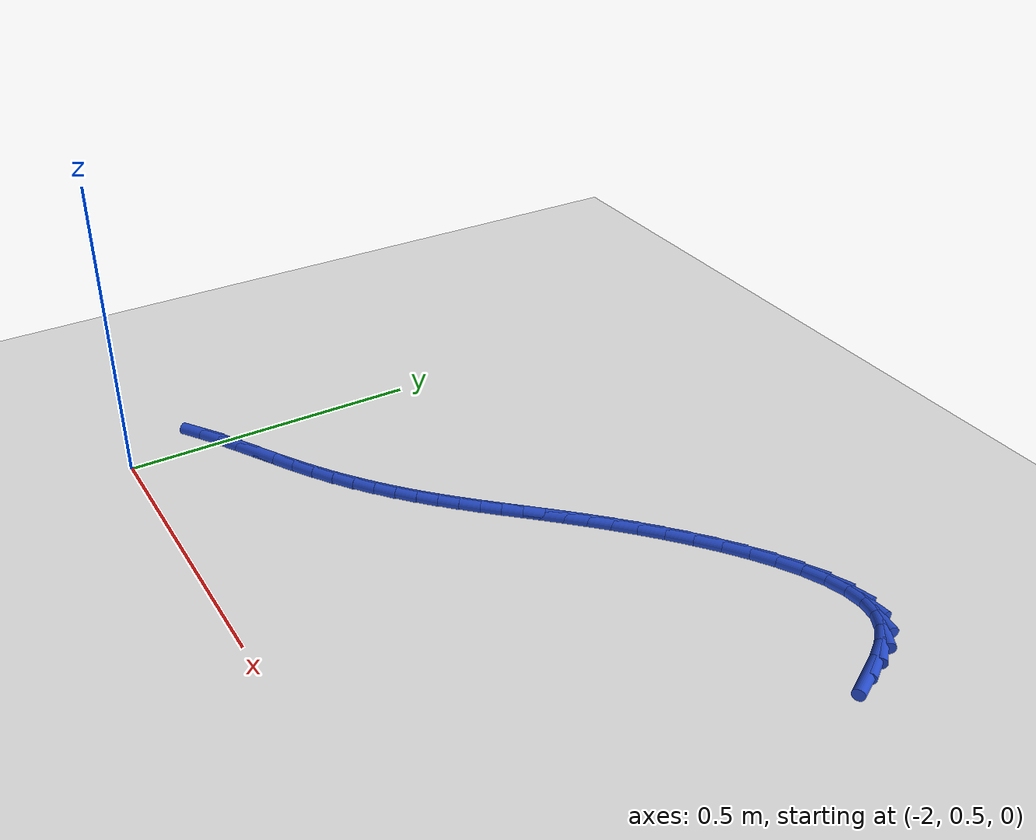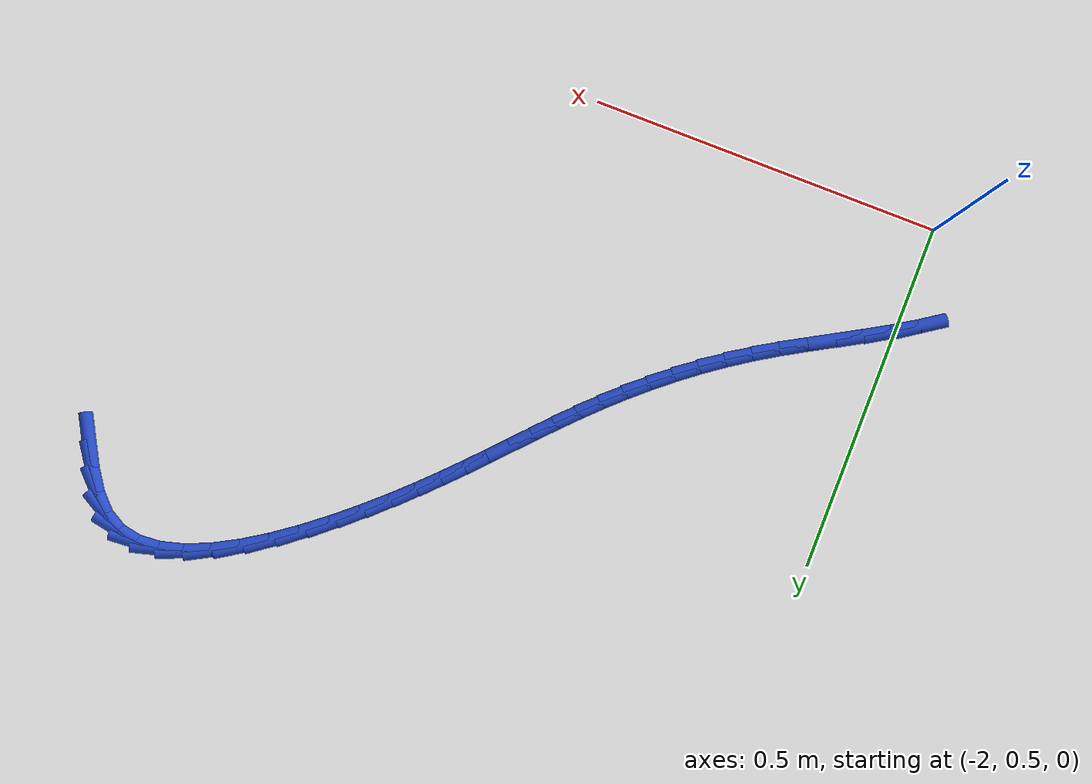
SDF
<sdf version="1.6">
 <world name="default">
  <model name="ground_plane">
   <static>1</static>
   <link name="link">
    <collision name="collision">
     <geometry><plane><normal>0 0 1</normal><size>100 100</size></plane></geometry>
     <surface><friction><ode><mu>100</mu><mu2>50</mu2></ode></friction></surface>
    </collision>
    <visual name="visual">
     <cast_shadows>0</cast_shadows>
     <geometry><plane><normal>0 0 1</normal><size>100 100</size></plane></geometry>
     <material>
      <script><uri>file://media/materials/scripts/gazebo.material</uri><name>Gazebo/WhiteGlow</name></script>
     </material>
    </visual>
   </link>
  </model>
  <model name="line">
   <link name="link_48">
    <pose>-1.013932435736309 1.1952450655422457 0.01 0 1.57 -1.0680367100440324</pose>
    <collision name="collision">
     <geometry><cylinder><radius>0.01</radius><length>0.08</length></cylinder></geometry>
    </collision>
    <visual name="visual">
     <material>
      <script><name>Gazebo/Blue</name><uri>file://media/materials/scripts/gazebo.material</uri></script>
     </material>
     <geometry><cylinder><radius>0.01</radius><length>0.08</length></cylinder></geometry>
    </visual>
   </link>
   <link name="link_49">
    <pose>-1.032186263223125 1.228440414046227 0.01 0 1.57 -0.9770756146621083</pose>
    <collision name="collision">
     <geometry><cylinder><radius>0.01</radius><length>0.08</length></cylinder></geometry>
    </collision>
    <visual name="visual">
     <material>
      <script><name>Gazebo/Blue</name><uri>file://media/materials/scripts/gazebo.material</uri></script>
     </material>
     <geometry><cylinder><radius>0.01</radius><length>0.08</length></cylinder></geometry>
    </visual>
   </link>
   <link name="link_50">
    <pose>-1.0517643571583584 1.2574468087781963 0.01 0 1.57 -0.8025219410421227</pose>
    <collision name="collision">
     <geometry><cylinder><radius>0.01</radius><length>0.08</length></cylinder></geometry>
    </collision>
    <visual name="visual">
     <material>
      <script><name>Gazebo/Blue</name><uri>file://media/materials/scripts/gazebo.material</uri></script>
     </material>
     <geometry><cylinder><radius>0.01</radius><length>0.08</length></cylinder></geometry>
    </visual>
   </link>
   <link name="link_51">
    <pose>-1.0736705333935666 1.2801163645518037 0.01 0 1.57 -0.5157008101195532</pose>
    <collision name="collision">
     <geometry><cylinder><radius>0.01</radius><length>0.08</length></cylinder></geometry>
    </collision>
    <visual name="visual">
     <material>
      <script><name>Gazebo/Blue</name><uri>file://media/materials/scripts/gazebo.material</uri></script>
     </material>
     <geometry><cylinder><radius>0.01</radius><length>0.08</length></cylinder></geometry>
    </visual>
   </link>
   <link name="link_52">
    <pose>-1.0988598838376158 1.2943953819164875 0.01 0 1.57 -0.18938155266959492</pose>
    <collision name="collision">
     <geometry><cylinder><radius>0.01</radius><length>0.08</length></cylinder></geometry>
    </collision>
    <visual name="visual">
     <material>
      <script><name>Gazebo/Blue</name><uri>file://media/materials/scripts/gazebo.material</uri></script>
     </material>
     <geometry><cylinder><radius>0.01</radius><length>0.08</length></cylinder></geometry>
    </visual>
   </link>
   <link name="link_53">
    <pose>-1.1274375725391494 1.29987311304801 0.01 0 1.57 0.07445049427166867</pose>
    <collision name="collision">
     <geometry><cylinder><radius>0.01</radius><length>0.08</length></cylinder></geometry>
    </collision>
    <visual name="visual">
     <material>
      <script><name>Gazebo/Blue</name><uri>file://media/materials/scripts/gazebo.material</uri></script>
     </material>
     <geometry><cylinder><radius>0.01</radius><length>0.08</length></cylinder></geometry>
    </visual>
   </link>
   <link name="link_54">
    <pose>-1.1587865712377918 1.297534842755186 0.01 0 1.57 0.26607413426901294</pose>
    <collision name="collision">
     <geometry><cylinder><radius>0.01</radius><length>0.08</length></cylinder></geometry>
    </collision>
    <visual name="visual">
     <material>
      <script><name>Gazebo/Blue</name><uri>file://media/materials/scripts/gazebo.material</uri></script>
     </material>
     <geometry><cylinder><radius>0.01</radius><length>0.08</length></cylinder></geometry>
    </visual>
   </link>
   <link name="link_55">
    <pose>-1.1922668874397386 1.288410246819792 0.01 0 1.57 0.4023137461545978</pose>
    <collision name="collision">
     <geometry><cylinder><radius>0.01</radius><length>0.08</length></cylinder></geometry>
    </collision>
    <visual name="visual">
     <material>
      <script><name>Gazebo/Blue</name><uri>file://media/materials/scripts/gazebo.material</uri></script>
     </material>
     <geometry><cylinder><radius>0.01</radius><length>0.08</length></cylinder></geometry>
    </visual>
   </link>
   <link name="link_56">
    <pose>-1.2272385286511858 1.2735290010236044 0.01 0 1.57 0.5008174520608945</pose>
    <collision name="collision">
     <geometry><cylinder><radius>0.01</radius><length>0.08</length></cylinder></geometry>
    </collision>
    <visual name="visual">
     <material>
      <script><name>Gazebo/Blue</name><uri>file://media/materials/scripts/gazebo.material</uri></script>
     </material>
     <geometry><cylinder><radius>0.01</radius><length>0.08</length></cylinder></geometry>
    </visual>
   </link>
   <link name="link_57">
    <pose>-1.2630615023783271 1.2539207811483994 0.01 0 1.57 0.5740934905510577</pose>
    <collision name="collision">
     <geometry><cylinder><radius>0.01</radius><length>0.08</length></cylinder></geometry>
    </collision>
    <visual name="visual">
     <material>
      <script><name>Gazebo/Blue</name><uri>file://media/materials/scripts/gazebo.material</uri></script>
     </material>
     <geometry><cylinder><radius>0.01</radius><length>0.08</length></cylinder></geometry>
    </visual>
   </link>
   <link name="link_58">
    <pose>-1.2990958161273587 1.2306152629759537 0.01 0 1.57 0.6302297011941482</pose>
    <collision name="collision">
     <geometry><cylinder><radius>0.01</radius><length>0.08</length></cylinder></geometry>
    </collision>
    <visual name="visual">
     <material>
      <script><name>Gazebo/Blue</name><uri>file://media/materials/scripts/gazebo.material</uri></script>
     </material>
     <geometry><cylinder><radius>0.01</radius><length>0.08</length></cylinder></geometry>
    </visual>
   </link>
   <link name="link_59">
    <pose>-1.3347014774044754 1.2046421222880435 0.01 0 1.57 0.6744137839557371</pose>
    <collision name="collision">
     <geometry><cylinder><radius>0.01</radius><length>0.08</length></cylinder></geometry>
    </collision>
    <visual name="visual">
     <material>
      <script><name>Gazebo/Blue</name><uri>file://media/materials/scripts/gazebo.material</uri></script>
     </material>
     <geometry><cylinder><radius>0.01</radius><length>0.08</length></cylinder></geometry>
    </visual>
   </link>
   <link name="link_60">
    <pose>-1.3692384937158733 1.1770310348664448 0.01 0 1.57 0.7100424940325585</pose>
    <collision name="collision">
     <geometry><cylinder><radius>0.01</radius><length>0.08</length></cylinder></geometry>
    </collision>
    <visual name="visual">
     <material>
      <script><name>Gazebo/Blue</name><uri>file://media/materials/scripts/gazebo.material</uri></script>
     </material>
     <geometry><cylinder><radius>0.01</radius><length>0.08</length></cylinder></geometry>
    </visual>
   </link>
   <link name="link_61">
    <pose>-1.4020668725677454 1.1488116764929341 0.01 0 1.57 0.7397726572771555</pose>
    <collision name="collision">
     <geometry><cylinder><radius>0.01</radius><length>0.08</length></cylinder></geometry>
    </collision>
    <visual name="visual">
     <material>
      <script><name>Gazebo/Blue</name><uri>file://media/materials/scripts/gazebo.material</uri></script>
     </material>
     <geometry><cylinder><radius>0.01</radius><length>0.08</length></cylinder></geometry>
    </visual>
   </link>
   <link name="link_62">
    <pose>-1.4326790900577868 1.1208727402609795 0.01 0 1.57 0.7661713701273847</pose>
    <collision name="collision">
     <geometry><cylinder><radius>0.01</radius><length>0.08</length></cylinder></geometry>
    </collision>
    <visual name="visual">
     <material>
      <script><name>Gazebo/Blue</name><uri>file://media/materials/scripts/gazebo.material</uri></script>
     </material>
     <geometry><cylinder><radius>0.01</radius><length>0.08</length></cylinder></geometry>
    </visual>
   </link>
   <link name="link_63">
    <pose>-1.4612185690662745 1.0934101344588634 0.01 0 1.57 0.7889852936206178</pose>
    <collision name="collision">
     <geometry><cylinder><radius>0.01</radius><length>0.08</length></cylinder></geometry>
    </collision>
    <visual name="visual">
     <material>
      <script><name>Gazebo/Blue</name><uri>file://media/materials/scripts/gazebo.material</uri></script>
     </material>
     <geometry><cylinder><radius>0.01</radius><length>0.08</length></cylinder></geometry>
    </visual>
   </link>
   <link name="link_64">
    <pose>-1.4880283501293594 1.0664073197792483 0.01 0 1.57 0.8072565799552895</pose>
    <collision name="collision">
     <geometry><cylinder><radius>0.01</radius><length>0.08</length></cylinder></geometry>
    </collision>
    <visual name="visual">
     <material>
      <script><name>Gazebo/Blue</name><uri>file://media/materials/scripts/gazebo.material</uri></script>
     </material>
     <geometry><cylinder><radius>0.01</radius><length>0.08</length></cylinder></geometry>
    </visual>
   </link>
   <link name="link_65">
    <pose>-1.5134515262422163 1.039847701084096 0.01 0 1.57 0.8200953908142818</pose>
    <collision name="collision">
     <geometry><cylinder><radius>0.01</radius><length>0.08</length></cylinder></geometry>
    </collision>
    <visual name="visual">
     <material>
      <script><name>Gazebo/Blue</name><uri>file://media/materials/scripts/gazebo.material</uri></script>
     </material>
     <geometry><cylinder><radius>0.01</radius><length>0.08</length></cylinder></geometry>
    </visual>
   </link>
   <link name="link_66">
    <pose>-1.5378311904000213 1.0137146832353696 0.01 0 1.57 0.8267444965421188</pose>
    <collision name="collision">
     <geometry><cylinder><radius>0.01</radius><length>0.08</length></cylinder></geometry>
    </collision>
    <visual name="visual">
     <material>
      <script><name>Gazebo/Blue</name><uri>file://media/materials/scripts/gazebo.material</uri></script>
     </material>
     <geometry><cylinder><radius>0.01</radius><length>0.08</length></cylinder></geometry>
    </visual>
   </link>
   <link name="link_67">
    <pose>-1.5615104355979477 0.9879916710950323 0.01 0 1.57 0.8266413520631027</pose>
    <collision name="collision">
     <geometry><cylinder><radius>0.01</radius><length>0.08</length></cylinder></geometry>
    </collision>
    <visual name="visual">
     <material>
      <script><name>Gazebo/Blue</name><uri>file://media/materials/scripts/gazebo.material</uri></script>
     </material>
     <geometry><cylinder><radius>0.01</radius><length>0.08</length></cylinder></geometry>
    </visual>
   </link>
   <link name="link_68">
    <pose>-1.5848323548311714 0.9626620695250462 0.01 0 1.57 0.8194729049188039</pose>
    <collision name="collision">
     <geometry><cylinder><radius>0.01</radius><length>0.08</length></cylinder></geometry>
    </collision>
    <visual name="visual">
     <material>
      <script><name>Gazebo/Blue</name><uri>file://media/materials/scripts/gazebo.material</uri></script>
     </material>
     <geometry><cylinder><radius>0.01</radius><length>0.08</length></cylinder></geometry>
    </visual>
   </link>
   <link name="link_69">
    <pose>-1.6081400410948663 0.9377092833873734 0.01 0 1.57 0.8052180258226997</pose>
    <collision name="collision">
     <geometry><cylinder><radius>0.01</radius><length>0.08</length></cylinder></geometry>
    </collision>
    <visual name="visual">
     <material>
      <script><name>Gazebo/Blue</name><uri>file://media/materials/scripts/gazebo.material</uri></script>
     </material>
     <geometry><cylinder><radius>0.01</radius><length>0.08</length></cylinder></geometry>
    </visual>
   </link>
   <link name="link_70">
    <pose>-1.631776587384207 0.9131167175439773 0.01 0 1.57 0.784171603818898</pose>
    <collision name="collision">
     <geometry><cylinder><radius>0.01</radius><length>0.08</length></cylinder></geometry>
    </collision>
    <visual name="visual">
     <material>
      <script><name>Gazebo/Blue</name><uri>file://media/materials/scripts/gazebo.material</uri></script>
     </material>
     <geometry><cylinder><radius>0.01</radius><length>0.08</length></cylinder></geometry>
    </visual>
   </link>
   <link name="link_71">
    <pose>-1.6560850866943693 0.8888677768568212 0.01 0 1.57 0.7574339520146466</pose>
    <collision name="collision">
     <geometry><cylinder><radius>0.01</radius><length>0.08</length></cylinder></geometry>
    </collision>
    <visual name="visual">
     <material>
      <script><name>Gazebo/Blue</name><uri>file://media/materials/scripts/gazebo.material</uri></script>
     </material>
     <geometry><cylinder><radius>0.01</radius><length>0.08</length></cylinder></geometry>
    </visual>
   </link>
   <link name="link_72">
    <pose>-1.681370363333642 0.8649585445702962 0.01 0 1.57 0.7279893042419832</pose>
    <collision name="collision">
     <geometry><cylinder><radius>0.01</radius><length>0.08</length></cylinder></geometry>
    </collision>
    <visual name="visual">
     <material>
      <script><name>Gazebo/Blue</name><uri>file://media/materials/scripts/gazebo.material</uri></script>
     </material>
     <geometry><cylinder><radius>0.01</radius><length>0.08</length></cylinder></geometry>
    </visual>
   </link>
   <link name="link_73">
    <pose>-1.707748496524687 0.8414476350102633 0.01 0 1.57 0.6967481591814403</pose>
    <collision name="collision">
     <geometry><cylinder><radius>0.01</radius><length>0.08</length></cylinder></geometry>
    </collision>
    <visual name="visual">
     <material>
      <script><name>Gazebo/Blue</name><uri>file://media/materials/scripts/gazebo.material</uri></script>
     </material>
     <geometry><cylinder><radius>0.01</radius><length>0.08</length></cylinder></geometry>
    </visual>
   </link>
   <link name="link_74">
    <pose>-1.735277476405817 0.818412907365323 0.01 0 1.57 0.6638352588885517</pose>
    <collision name="collision">
     <geometry><cylinder><radius>0.01</radius><length>0.08</length></cylinder></geometry>
    </collision>
    <visual name="visual">
     <material>
      <script><name>Gazebo/Blue</name><uri>file://media/materials/scripts/gazebo.material</uri></script>
     </material>
     <geometry><cylinder><radius>0.01</radius><length>0.08</length></cylinder></geometry>
    </visual>
   </link>
   <link name="link_75">
    <pose>-1.7640152770739914 0.7959322261385633 0.01 0 1.57 0.6293899566559076</pose>
    <collision name="collision">
     <geometry><cylinder><radius>0.01</radius><length>0.08</length></cylinder></geometry>
    </collision>
    <visual name="visual">
     <material>
      <script><name>Gazebo/Blue</name><uri>file://media/materials/scripts/gazebo.material</uri></script>
     </material>
     <geometry><cylinder><radius>0.01</radius><length>0.08</length></cylinder></geometry>
    </visual>
   </link>
   <link name="link_76">
    <pose>-1.7940198726261685 0.7740834558330704 0.01 0 1.57 0.5935670678103601</pose>
    <collision name="collision">
     <geometry><cylinder><radius>0.01</radius><length>0.08</length></cylinder></geometry>
    </collision>
    <visual name="visual">
     <material>
      <script><name>Gazebo/Blue</name><uri>file://media/materials/scripts/gazebo.material</uri></script>
     </material>
     <geometry><cylinder><radius>0.01</radius><length>0.08</length></cylinder></geometry>
    </visual>
   </link>
   <link name="link_77">
    <pose>-1.8253492371593074 0.7529444609519327 0.01 0 1.57 0.5574463275758754</pose>
    <collision name="collision">
     <geometry><cylinder><radius>0.01</radius><length>0.08</length></cylinder></geometry>
    </collision>
    <visual name="visual">
     <material>
      <script><name>Gazebo/Blue</name><uri>file://media/materials/scripts/gazebo.material</uri></script>
     </material>
     <geometry><cylinder><radius>0.01</radius><length>0.08</length></cylinder></geometry>
    </visual>
   </link>
   <link name="link_78">
    <pose>-1.8580286419655099 0.7325721925354326 0.01 0 1.57 0.5302896894429907</pose>
    <collision name="collision">
     <geometry><cylinder><radius>0.01</radius><length>0.08</length></cylinder></geometry>
    </collision>
    <visual name="visual">
     <material>
      <script><name>Gazebo/Blue</name><uri>file://media/materials/scripts/gazebo.material</uri></script>
     </material>
     <geometry><cylinder><radius>0.01</radius><length>0.08</length></cylinder></geometry>
    </visual>
   </link>
   <link name="link_79">
    <pose>-1.8917424391536246 0.7128055836070596 0.01 0 1.57 0.5167568934821275</pose>
    <collision name="collision">
     <geometry><cylinder><radius>0.01</radius><length>0.08</length></cylinder></geometry>
    </collision>
    <visual name="visual">
     <material>
      <script><name>Gazebo/Blue</name><uri>file://media/materials/scripts/gazebo.material</uri></script>
     </material>
     <geometry><cylinder><radius>0.01</radius><length>0.08</length></cylinder></geometry>
    </visual>
   </link>
   <link name="link_80">
    <pose>-1.9259723413863357 0.6933539791461382 0.01 0 1.57 0.5163178331271729</pose>
    <collision name="collision">
     <geometry><cylinder><radius>0.01</radius><length>0.08</length></cylinder></geometry>
    </collision>
    <visual name="visual">
     <material>
      <script><name>Gazebo/Blue</name><uri>file://media/materials/scripts/gazebo.material</uri></script>
     </material>
     <geometry><cylinder><radius>0.01</radius><length>0.08</length></cylinder></geometry>
    </visual>
   </link>
   <link name="link_81">
    <pose>-1.9601973829031427 0.6739250112788004 0.01 0 1.57 0.5289778249538523</pose>
    <collision name="collision">
     <geometry><cylinder><radius>0.01</radius><length>0.08</length></cylinder></geometry>
    </collision>
    <visual name="visual">
     <material>
      <script><name>Gazebo/Blue</name><uri>file://media/materials/scripts/gazebo.material</uri></script>
     </material>
     <geometry><cylinder><radius>0.01</radius><length>0.08</length></cylinder></geometry>
    </visual>
   </link>
   <link name="link_82">
    <pose>-1.9938965979435455 0.6542263121311791 0.01 0 1.57 0.5553561493418969</pose>
    <collision name="collision">
     <geometry><cylinder><radius>0.01</radius><length>0.08</length></cylinder></geometry>
    </collision>
    <visual name="visual">
     <material>
      <script><name>Gazebo/Blue</name><uri>file://media/materials/scripts/gazebo.material</uri></script>
     </material>
     <geometry><cylinder><radius>0.01</radius><length>0.08</length></cylinder></geometry>
    </visual>
   </link>
   <link name="link_83">
    <pose>-2.026549020747043 0.6339655138294075 0.01 0 1.57 0.5966857856951837</pose>
    <collision name="collision">
     <geometry><cylinder><radius>0.01</radius><length>0.08</length></cylinder></geometry>
    </collision>
    <visual name="visual">
     <material>
      <script><name>Gazebo/Blue</name><uri>file://media/materials/scripts/gazebo.material</uri></script>
     </material>
     <geometry><cylinder><radius>0.01</radius><length>0.08</length></cylinder></geometry>
    </visual>
   </link>
  </model>
 </world>
</sdf>
